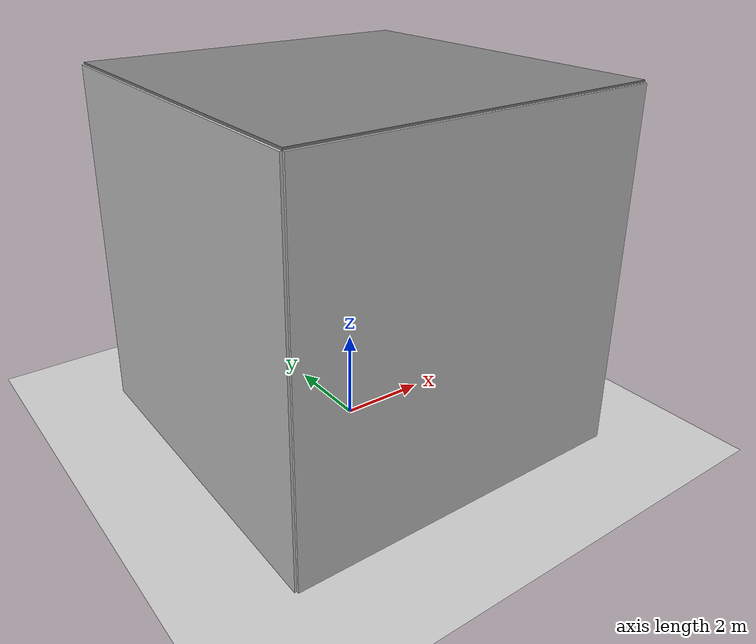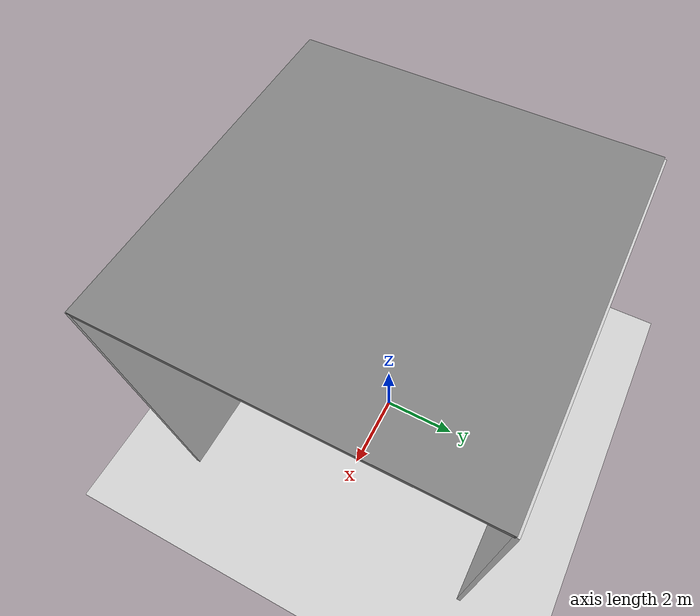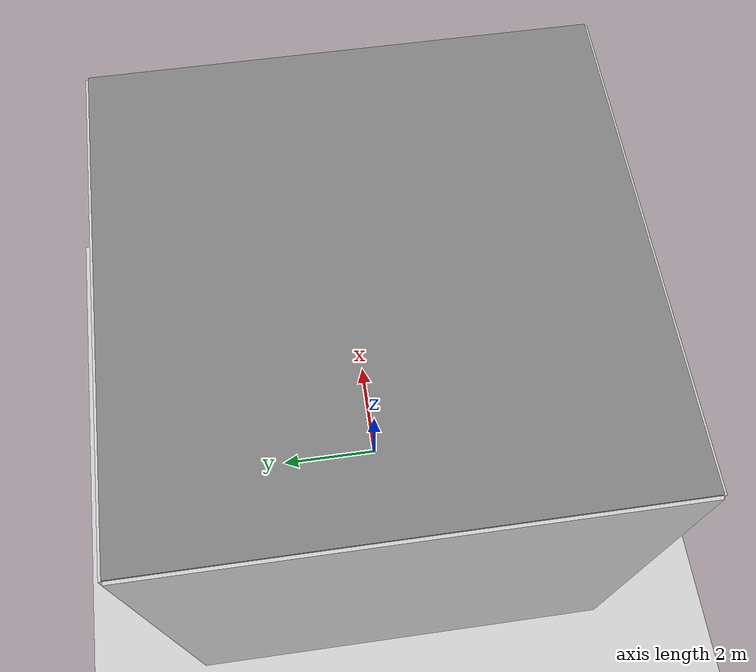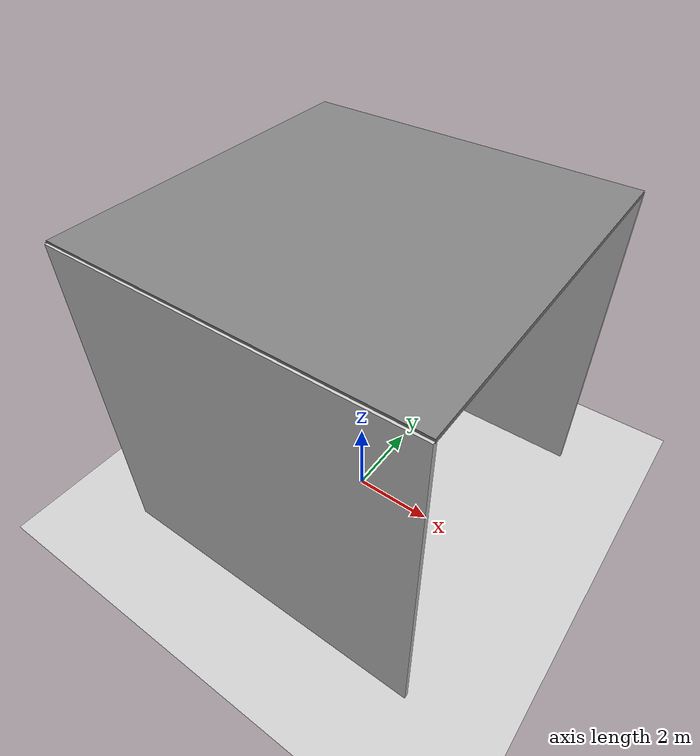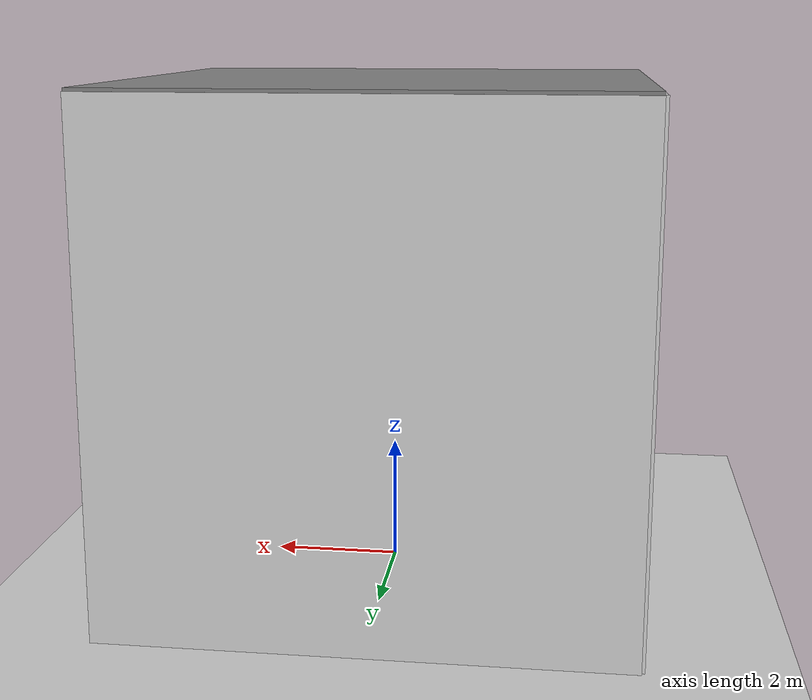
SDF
<sdf version="1.7">
  <world name="room_world">
    <include>
      <uri>model://sun</uri>
    </include>
    <include>
      <uri>model://ground_plane</uri>
    </include>

    <!-- Walls -->
    <model name="wall_1">
      <static>true</static>
      <link name="link">
        <pose>0 4 4 0 0 0</pose>
        <visual name="visual">
          <geometry>
            <box>
              <size>8 0.1 8</size>
            </box>
          </geometry>
          <material>
            <ambient>0.8 0.8 0.8 1</ambient>
          </material>
        </visual>
        <collision name="collision">
          <geometry>
            <box>
              <size>8 0.1 8</size>
            </box>
          </geometry>
        </collision>
      </link>
    </model>

    <model name="wall_2">
      <static>true</static>
      <link name="link">
        <pose>0 -4 4 0 0 0</pose>
        <visual name="visual">
          <geometry>
            <box>
              <size>8 0.1 8</size>
            </box>
          </geometry>
          <material>
            <ambient>0.8 0.8 0.8 1</ambient>
          </material>
        </visual>
        <collision name="collision">
          <geometry>
            <box>
              <size>8 0.1 8</size>
            </box>
          </geometry>
        </collision>
      </link>
    </model>

    <model name="wall_4">
      <static>true</static>
      <link name="link">
        <pose>-4 0 4 0 0 0</pose>
        <visual name="visual">
          <geometry>
            <box>
              <size>0.1 8 8</size>
            </box>
          </geometry>
          <material>
            <ambient>0.8 0.8 0.8 1</ambient>
          </material>
        </visual>
        <collision name="collision">
          <geometry>
            <box>
              <size>0.1 8 8</size>
            </box>
          </geometry>
        </collision>
      </link>
    </model>

    <!-- Roof -->
    <model name="roof">
      <static>true</static>
      <link name="link">
        <pose>0 0 8 0 0 0</pose>
        <visual name="visual">
          <geometry>
            <box>
              <size>8 8 0.1</size>
            </box>
          </geometry>
          <material>
            <ambient>0.5 0.5 0.5 1</ambient>
          </material>
        </visual>
        <collision name="collision">
          <geometry>
            <box>
              <size>8 8 0.1</size>
            </box>
          </geometry>
        </collision>
      </link>
    </model>
  </world>
</sdf>
